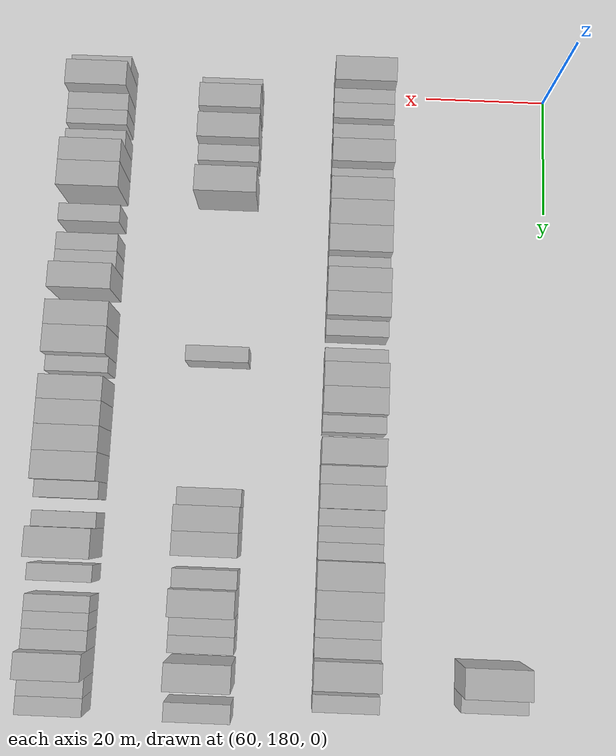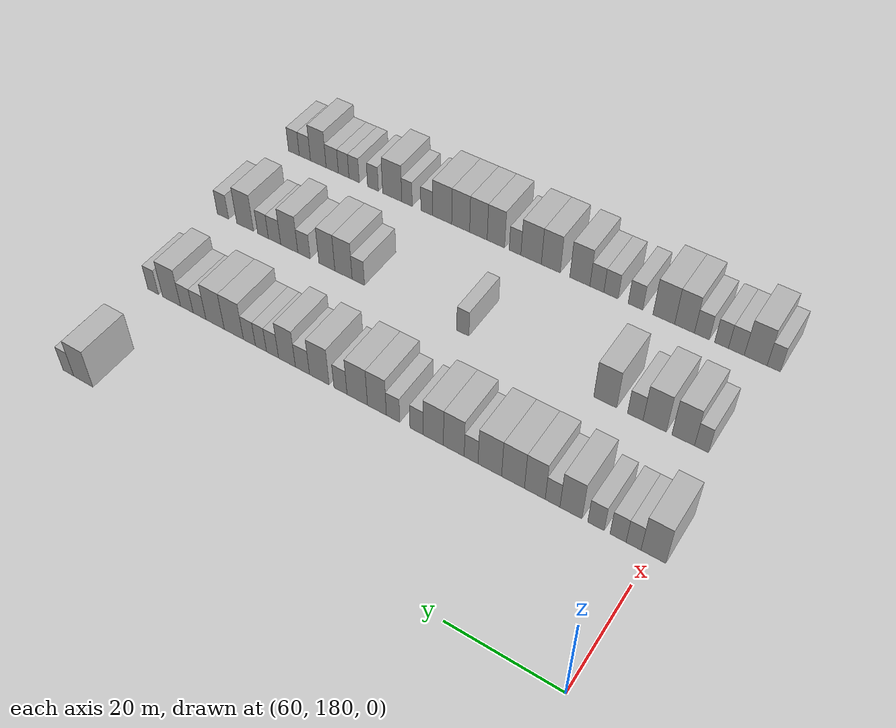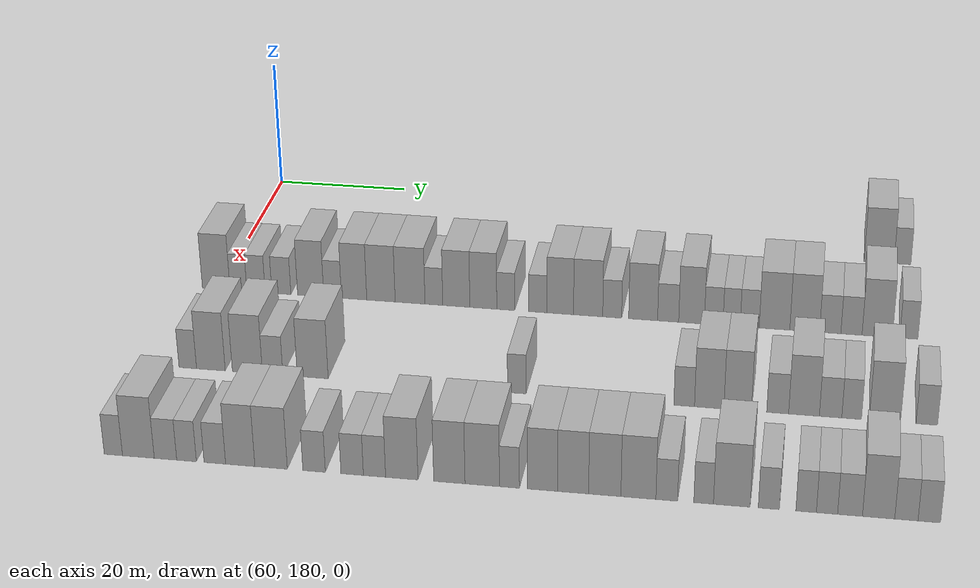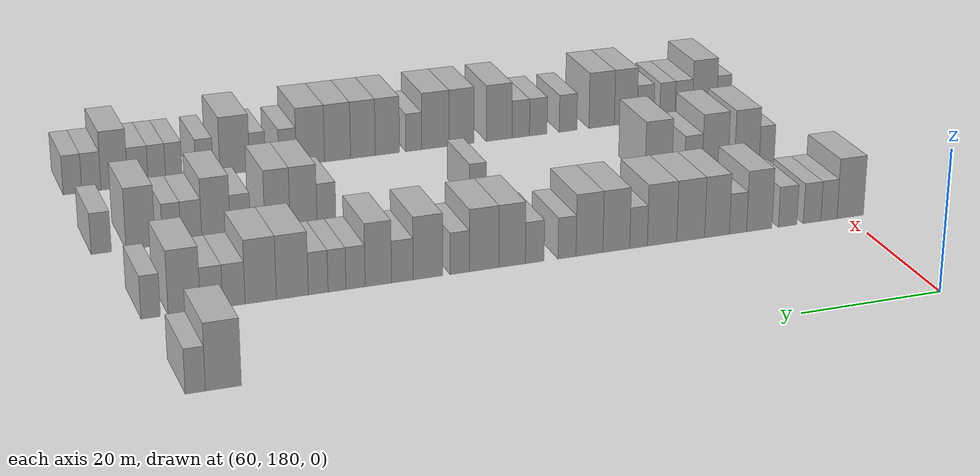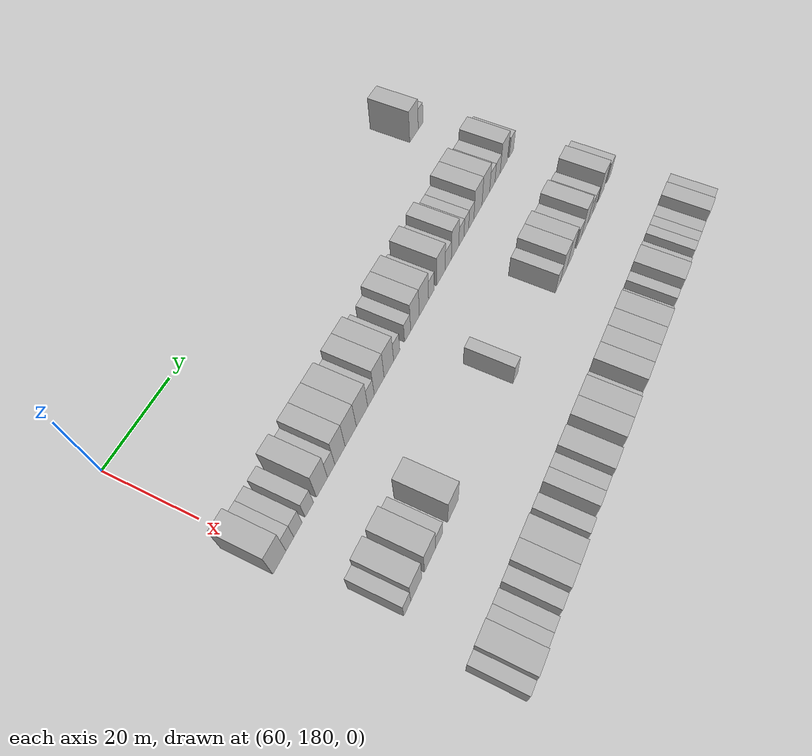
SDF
<sdf version="1.6">
 <world name="default">
  <model name="building_550">
   <static>1</static>
   <pose>69.0000 274.7743 0 0.000000 0.000000 0.000000</pose>
   <link name="link">
    <pose>0 0 4.50 0 0 0</pose>
    <collision name="collision"><geometry><box><size>10.0000 4.4063 9.0000</size></box></geometry></collision>
    <visual name="visual">
     <cast_shadows>0</cast_shadows>
     <geometry><box><size>10.0000 4.4063 9.0000</size></box></geometry>
     <material>
      <script>
       <uri>model://HANNAS_wall/materials/scripts</uri>
       <uri>model://HANNAS_wall/materials/textures</uri>
       <name>vrc/HANNAS_wall</name>
      </script>
     </material>
    </visual>
   </link>
  </model>
  <model name="building_551">
   <static>1</static>
   <pose>69.0000 278.2149 0 0.000000 0.000000 0.000000</pose>
   <link name="link">
    <pose>0 0 3.00 0 0 0</pose>
    <collision name="collision"><geometry><box><size>10.0000 2.4749 6.0000</size></box></geometry></collision>
    <visual name="visual">
     <cast_shadows>0</cast_shadows>
     <geometry><box><size>10.0000 2.4749 6.0000</size></box></geometry>
     <material>
      <script>
       <uri>model://HANNAS_wall/materials/scripts</uri>
       <uri>model://HANNAS_wall/materials/textures</uri>
       <name>vrc/HANNAS_wall</name>
      </script>
     </material>
    </visual>
   </link>
  </model>
  <model name="building_712">
   <static>1</static>
   <pose>91.0000 179.4880 0 0.000000 0.000000 0.000000</pose>
   <link name="link">
    <pose>0 0 4.50 0 0 0</pose>
    <collision name="collision"><geometry><box><size>10.0000 4.1334 9.0000</size></box></geometry></collision>
    <visual name="visual">
     <cast_shadows>0</cast_shadows>
     <geometry><box><size>10.0000 4.1334 9.0000</size></box></geometry>
     <material>
      <script>
       <uri>model://HANNAS_wall/materials/scripts</uri>
       <uri>model://HANNAS_wall/materials/textures</uri>
       <name>vrc/HANNAS_wall</name>
      </script>
     </material>
    </visual>
   </link>
  </model>
  <model name="building_713">
   <static>1</static>
   <pose>91.0000 182.8080 0 0.000000 0.000000 0.000000</pose>
   <link name="link">
    <pose>0 0 3.00 0 0 0</pose>
    <collision name="collision"><geometry><box><size>10.0000 2.5066 6.0000</size></box></geometry></collision>
    <visual name="visual">
     <cast_shadows>0</cast_shadows>
     <geometry><box><size>10.0000 2.5066 6.0000</size></box></geometry>
     <material>
      <script>
       <uri>model://HANNAS_wall/materials/scripts</uri>
       <uri>model://HANNAS_wall/materials/textures</uri>
       <name>vrc/HANNAS_wall</name>
      </script>
     </material>
    </visual>
   </link>
  </model>
  <model name="building_714">
   <static>1</static>
   <pose>91.0000 185.4249 0 0.000000 0.000000 0.000000</pose>
   <link name="link">
    <pose>0 0 3.00 0 0 0</pose>
    <collision name="collision"><geometry><box><size>10.0000 2.7272 6.0000</size></box></geometry></collision>
    <visual name="visual">
     <cast_shadows>0</cast_shadows>
     <geometry><box><size>10.0000 2.7272 6.0000</size></box></geometry>
     <material>
      <script>
       <uri>model://HANNAS_wall/materials/scripts</uri>
       <uri>model://HANNAS_wall/materials/textures</uri>
       <name>vrc/HANNAS_wall</name>
      </script>
     </material>
    </visual>
   </link>
  </model>
  <model name="building_715">
   <static>1</static>
   <pose>91.0000 189.2018 0 0.000000 0.000000 0.000000</pose>
   <link name="link">
    <pose>0 0 3.00 0 0 0</pose>
    <collision name="collision"><geometry><box><size>10.0000 2.8266 6.0000</size></box></geometry></collision>
    <visual name="visual">
     <cast_shadows>0</cast_shadows>
     <geometry><box><size>10.0000 2.8266 6.0000</size></box></geometry>
     <material>
      <script>
       <uri>model://HANNAS_wall/materials/scripts</uri>
       <uri>model://HANNAS_wall/materials/textures</uri>
       <name>vrc/HANNAS_wall</name>
      </script>
     </material>
    </visual>
   </link>
  </model>
  <model name="building_716">
   <static>1</static>
   <pose>91.0000 193.5491 0 0.000000 0.000000 0.000000</pose>
   <link name="link">
    <pose>0 0 4.50 0 0 0</pose>
    <collision name="collision"><geometry><box><size>10.0000 3.8680 9.0000</size></box></geometry></collision>
    <visual name="visual">
     <cast_shadows>0</cast_shadows>
     <geometry><box><size>10.0000 3.8680 9.0000</size></box></geometry>
     <material>
      <script>
       <uri>model://HANNAS_wall/materials/scripts</uri>
       <uri>model://HANNAS_wall/materials/textures</uri>
       <name>vrc/HANNAS_wall</name>
      </script>
     </material>
    </visual>
   </link>
  </model>
  <model name="building_717">
   <static>1</static>
   <pose>91.0000 196.7851 0 0.000000 0.000000 0.000000</pose>
   <link name="link">
    <pose>0 0 3.00 0 0 0</pose>
    <collision name="collision"><geometry><box><size>10.0000 2.6040 6.0000</size></box></geometry></collision>
    <visual name="visual">
     <cast_shadows>0</cast_shadows>
     <geometry><box><size>10.0000 2.6040 6.0000</size></box></geometry>
     <material>
      <script>
       <uri>model://HANNAS_wall/materials/scripts</uri>
       <uri>model://HANNAS_wall/materials/textures</uri>
       <name>vrc/HANNAS_wall</name>
      </script>
     </material>
    </visual>
   </link>
  </model>
  <model name="building_718">
   <static>1</static>
   <pose>91.0000 199.9524 0 0.000000 0.000000 0.000000</pose>
   <link name="link">
    <pose>0 0 4.50 0 0 0</pose>
    <collision name="collision"><geometry><box><size>10.0000 3.7306 9.0000</size></box></geometry></collision>
    <visual name="visual">
     <cast_shadows>0</cast_shadows>
     <geometry><box><size>10.0000 3.7306 9.0000</size></box></geometry>
     <material>
      <script>
       <uri>model://HANNAS_wall/materials/scripts</uri>
       <uri>model://HANNAS_wall/materials/textures</uri>
       <name>vrc/HANNAS_wall</name>
      </script>
     </material>
    </visual>
   </link>
  </model>
  <model name="building_719">
   <static>1</static>
   <pose>91.0000 203.9065 0 0.000000 0.000000 0.000000</pose>
   <link name="link">
    <pose>0 0 4.50 0 0 0</pose>
    <collision name="collision"><geometry><box><size>10.0000 4.1776 9.0000</size></box></geometry></collision>
    <visual name="visual">
     <cast_shadows>0</cast_shadows>
     <geometry><box><size>10.0000 4.1776 9.0000</size></box></geometry>
     <material>
      <script>
       <uri>model://HANNAS_wall/materials/scripts</uri>
       <uri>model://HANNAS_wall/materials/textures</uri>
       <name>vrc/HANNAS_wall</name>
      </script>
     </material>
    </visual>
   </link>
  </model>
  <model name="building_720">
   <static>1</static>
   <pose>91.0000 208.1771 0 0.000000 0.000000 0.000000</pose>
   <link name="link">
    <pose>0 0 4.50 0 0 0</pose>
    <collision name="collision"><geometry><box><size>10.0000 4.3636 9.0000</size></box></geometry></collision>
    <visual name="visual">
     <cast_shadows>0</cast_shadows>
     <geometry><box><size>10.0000 4.3636 9.0000</size></box></geometry>
     <material>
      <script>
       <uri>model://HANNAS_wall/materials/scripts</uri>
       <uri>model://HANNAS_wall/materials/textures</uri>
       <name>vrc/HANNAS_wall</name>
      </script>
     </material>
    </visual>
   </link>
  </model>
  <model name="building_721">
   <static>1</static>
   <pose>91.0000 211.6557 0 0.000000 0.000000 0.000000</pose>
   <link name="link">
    <pose>0 0 3.00 0 0 0</pose>
    <collision name="collision"><geometry><box><size>10.0000 2.5936 6.0000</size></box></geometry></collision>
    <visual name="visual">
     <cast_shadows>0</cast_shadows>
     <geometry><box><size>10.0000 2.5936 6.0000</size></box></geometry>
     <material>
      <script>
       <uri>model://HANNAS_wall/materials/scripts</uri>
       <uri>model://HANNAS_wall/materials/textures</uri>
       <name>vrc/HANNAS_wall</name>
      </script>
     </material>
    </visual>
   </link>
  </model>
  <model name="building_722">
   <static>1</static>
   <pose>91.0000 214.9218 0 0.000000 0.000000 0.000000</pose>
   <link name="link">
    <pose>0 0 4.50 0 0 0</pose>
    <collision name="collision"><geometry><box><size>10.0000 3.9386 9.0000</size></box></geometry></collision>
    <visual name="visual">
     <cast_shadows>0</cast_shadows>
     <geometry><box><size>10.0000 3.9386 9.0000</size></box></geometry>
     <material>
      <script>
       <uri>model://HANNAS_wall/materials/scripts</uri>
       <uri>model://HANNAS_wall/materials/textures</uri>
       <name>vrc/HANNAS_wall</name>
      </script>
     </material>
    </visual>
   </link>
  </model>
  <model name="building_723">
   <static>1</static>
   <pose>91.0000 218.8424 0 0.000000 0.000000 0.000000</pose>
   <link name="link">
    <pose>0 0 4.50 0 0 0</pose>
    <collision name="collision"><geometry><box><size>10.0000 3.9027 9.0000</size></box></geometry></collision>
    <visual name="visual">
     <cast_shadows>0</cast_shadows>
     <geometry><box><size>10.0000 3.9027 9.0000</size></box></geometry>
     <material>
      <script>
       <uri>model://HANNAS_wall/materials/scripts</uri>
       <uri>model://HANNAS_wall/materials/textures</uri>
       <name>vrc/HANNAS_wall</name>
      </script>
     </material>
    </visual>
   </link>
  </model>
  <model name="building_724">
   <static>1</static>
   <pose>91.0000 222.0923 0 0.000000 0.000000 0.000000</pose>
   <link name="link">
    <pose>0 0 3.00 0 0 0</pose>
    <collision name="collision"><geometry><box><size>10.0000 2.5969 6.0000</size></box></geometry></collision>
    <visual name="visual">
     <cast_shadows>0</cast_shadows>
     <geometry><box><size>10.0000 2.5969 6.0000</size></box></geometry>
     <material>
      <script>
       <uri>model://HANNAS_wall/materials/scripts</uri>
       <uri>model://HANNAS_wall/materials/textures</uri>
       <name>vrc/HANNAS_wall</name>
      </script>
     </material>
    </visual>
   </link>
  </model>
  <model name="building_725">
   <static>1</static>
   <pose>91.0000 226.7240 0 0.000000 0.000000 0.000000</pose>
   <link name="link">
    <pose>0 0 3.00 0 0 0</pose>
    <collision name="collision"><geometry><box><size>10.0000 2.6665 6.0000</size></box></geometry></collision>
    <visual name="visual">
     <cast_shadows>0</cast_shadows>
     <geometry><box><size>10.0000 2.6665 6.0000</size></box></geometry>
     <material>
      <script>
       <uri>model://HANNAS_wall/materials/scripts</uri>
       <uri>model://HANNAS_wall/materials/textures</uri>
       <name>vrc/HANNAS_wall</name>
      </script>
     </material>
    </visual>
   </link>
  </model>
  <model name="building_726">
   <static>1</static>
   <pose>91.0000 229.9558 0 0.000000 0.000000 0.000000</pose>
   <link name="link">
    <pose>0 0 4.50 0 0 0</pose>
    <collision name="collision"><geometry><box><size>10.0000 3.7972 9.0000</size></box></geometry></collision>
    <visual name="visual">
     <cast_shadows>0</cast_shadows>
     <geometry><box><size>10.0000 3.7972 9.0000</size></box></geometry>
     <material>
      <script>
       <uri>model://HANNAS_wall/materials/scripts</uri>
       <uri>model://HANNAS_wall/materials/textures</uri>
       <name>vrc/HANNAS_wall</name>
      </script>
     </material>
    </visual>
   </link>
  </model>
  <model name="building_727">
   <static>1</static>
   <pose>91.0000 233.9412 0 0.000000 0.000000 0.000000</pose>
   <link name="link">
    <pose>0 0 4.50 0 0 0</pose>
    <collision name="collision"><geometry><box><size>10.0000 4.1735 9.0000</size></box></geometry></collision>
    <visual name="visual">
     <cast_shadows>0</cast_shadows>
     <geometry><box><size>10.0000 4.1735 9.0000</size></box></geometry>
     <material>
      <script>
       <uri>model://HANNAS_wall/materials/scripts</uri>
       <uri>model://HANNAS_wall/materials/textures</uri>
       <name>vrc/HANNAS_wall</name>
      </script>
     </material>
    </visual>
   </link>
  </model>
  <model name="building_728">
   <static>1</static>
   <pose>91.0000 237.3779 0 0.000000 0.000000 0.000000</pose>
   <link name="link">
    <pose>0 0 3.00 0 0 0</pose>
    <collision name="collision"><geometry><box><size>10.0000 2.7000 6.0000</size></box></geometry></collision>
    <visual name="visual">
     <cast_shadows>0</cast_shadows>
     <geometry><box><size>10.0000 2.7000 6.0000</size></box></geometry>
     <material>
      <script>
       <uri>model://HANNAS_wall/materials/scripts</uri>
       <uri>model://HANNAS_wall/materials/textures</uri>
       <name>vrc/HANNAS_wall</name>
      </script>
     </material>
    </visual>
   </link>
  </model>
  <model name="building_729">
   <static>1</static>
   <pose>91.0000 241.7847 0 0.000000 0.000000 0.000000</pose>
   <link name="link">
    <pose>0 0 4.50 0 0 0</pose>
    <collision name="collision"><geometry><box><size>10.0000 4.1135 9.0000</size></box></geometry></collision>
    <visual name="visual">
     <cast_shadows>0</cast_shadows>
     <geometry><box><size>10.0000 4.1135 9.0000</size></box></geometry>
     <material>
      <script>
       <uri>model://HANNAS_wall/materials/scripts</uri>
       <uri>model://HANNAS_wall/materials/textures</uri>
       <name>vrc/HANNAS_wall</name>
      </script>
     </material>
    </visual>
   </link>
  </model>
  <model name="building_730">
   <static>1</static>
   <pose>91.0000 245.3384 0 0.000000 0.000000 0.000000</pose>
   <link name="link">
    <pose>0 0 3.00 0 0 0</pose>
    <collision name="collision"><geometry><box><size>10.0000 2.9939 6.0000</size></box></geometry></collision>
    <visual name="visual">
     <cast_shadows>0</cast_shadows>
     <geometry><box><size>10.0000 2.9939 6.0000</size></box></geometry>
     <material>
      <script>
       <uri>model://HANNAS_wall/materials/scripts</uri>
       <uri>model://HANNAS_wall/materials/textures</uri>
       <name>vrc/HANNAS_wall</name>
      </script>
     </material>
    </visual>
   </link>
  </model>
  <model name="building_731">
   <static>1</static>
   <pose>91.0000 248.6474 0 0.000000 0.000000 0.000000</pose>
   <link name="link">
    <pose>0 0 4.50 0 0 0</pose>
    <collision name="collision"><geometry><box><size>10.0000 3.6241 9.0000</size></box></geometry></collision>
    <visual name="visual">
     <cast_shadows>0</cast_shadows>
     <geometry><box><size>10.0000 3.6241 9.0000</size></box></geometry>
     <material>
      <script>
       <uri>model://HANNAS_wall/materials/scripts</uri>
       <uri>model://HANNAS_wall/materials/textures</uri>
       <name>vrc/HANNAS_wall</name>
      </script>
     </material>
    </visual>
   </link>
  </model>
  <model name="building_732">
   <static>1</static>
   <pose>91.0000 251.7735 0 0.000000 0.000000 0.000000</pose>
   <link name="link">
    <pose>0 0 3.00 0 0 0</pose>
    <collision name="collision"><geometry><box><size>10.0000 2.6281 6.0000</size></box></geometry></collision>
    <visual name="visual">
     <cast_shadows>0</cast_shadows>
     <geometry><box><size>10.0000 2.6281 6.0000</size></box></geometry>
     <material>
      <script>
       <uri>model://HANNAS_wall/materials/scripts</uri>
       <uri>model://HANNAS_wall/materials/textures</uri>
       <name>vrc/HANNAS_wall</name>
      </script>
     </material>
    </visual>
   </link>
  </model>
  <model name="building_733">
   <static>1</static>
   <pose>91.0000 254.2997 0 0.000000 0.000000 0.000000</pose>
   <link name="link">
    <pose>0 0 3.00 0 0 0</pose>
    <collision name="collision"><geometry><box><size>10.0000 2.4244 6.0000</size></box></geometry></collision>
    <visual name="visual">
     <cast_shadows>0</cast_shadows>
     <geometry><box><size>10.0000 2.4244 6.0000</size></box></geometry>
     <material>
      <script>
       <uri>model://HANNAS_wall/materials/scripts</uri>
       <uri>model://HANNAS_wall/materials/textures</uri>
       <name>vrc/HANNAS_wall</name>
      </script>
     </material>
    </visual>
   </link>
  </model>
  <model name="building_734">
   <static>1</static>
   <pose>91.0000 256.8444 0 0.000000 0.000000 0.000000</pose>
   <link name="link">
    <pose>0 0 3.00 0 0 0</pose>
    <collision name="collision"><geometry><box><size>10.0000 2.6650 6.0000</size></box></geometry></collision>
    <visual name="visual">
     <cast_shadows>0</cast_shadows>
     <geometry><box><size>10.0000 2.6650 6.0000</size></box></geometry>
     <material>
      <script>
       <uri>model://HANNAS_wall/materials/scripts</uri>
       <uri>model://HANNAS_wall/materials/textures</uri>
       <name>vrc/HANNAS_wall</name>
      </script>
     </material>
    </visual>
   </link>
  </model>
  <model name="building_735">
   <static>1</static>
   <pose>91.0000 260.3201 0 0.000000 0.000000 0.000000</pose>
   <link name="link">
    <pose>0 0 4.50 0 0 0</pose>
    <collision name="collision"><geometry><box><size>10.0000 4.2863 9.0000</size></box></geometry></collision>
    <visual name="visual">
     <cast_shadows>0</cast_shadows>
     <geometry><box><size>10.0000 4.2863 9.0000</size></box></geometry>
     <material>
      <script>
       <uri>model://HANNAS_wall/materials/scripts</uri>
       <uri>model://HANNAS_wall/materials/textures</uri>
       <name>vrc/HANNAS_wall</name>
      </script>
     </material>
    </visual>
   </link>
  </model>
  <model name="building_736">
   <static>1</static>
   <pose>91.0000 264.5399 0 0.000000 0.000000 0.000000</pose>
   <link name="link">
    <pose>0 0 4.50 0 0 0</pose>
    <collision name="collision"><geometry><box><size>10.0000 4.1533 9.0000</size></box></geometry></collision>
    <visual name="visual">
     <cast_shadows>0</cast_shadows>
     <geometry><box><size>10.0000 4.1533 9.0000</size></box></geometry>
     <material>
      <script>
       <uri>model://HANNAS_wall/materials/scripts</uri>
       <uri>model://HANNAS_wall/materials/textures</uri>
       <name>vrc/HANNAS_wall</name>
      </script>
     </material>
    </visual>
   </link>
  </model>
  <model name="building_737">
   <static>1</static>
   <pose>91.0000 268.0939 0 0.000000 0.000000 0.000000</pose>
   <link name="link">
    <pose>0 0 3.00 0 0 0</pose>
    <collision name="collision"><geometry><box><size>10.0000 2.9546 6.0000</size></box></geometry></collision>
    <visual name="visual">
     <cast_shadows>0</cast_shadows>
     <geometry><box><size>10.0000 2.9546 6.0000</size></box></geometry>
     <material>
      <script>
       <uri>model://HANNAS_wall/materials/scripts</uri>
       <uri>model://HANNAS_wall/materials/textures</uri>
       <name>vrc/HANNAS_wall</name>
      </script>
     </material>
    </visual>
   </link>
  </model>
  <model name="building_738">
   <static>1</static>
   <pose>91.0000 271.0412 0 0.000000 0.000000 0.000000</pose>
   <link name="link">
    <pose>0 0 3.00 0 0 0</pose>
    <collision name="collision"><geometry><box><size>10.0000 2.9401 6.0000</size></box></geometry></collision>
    <visual name="visual">
     <cast_shadows>0</cast_shadows>
     <geometry><box><size>10.0000 2.9401 6.0000</size></box></geometry>
     <material>
      <script>
       <uri>model://HANNAS_wall/materials/scripts</uri>
       <uri>model://HANNAS_wall/materials/textures</uri>
       <name>vrc/HANNAS_wall</name>
      </script>
     </material>
    </visual>
   </link>
  </model>
  <model name="building_739">
   <static>1</static>
   <pose>91.0000 274.6140 0 0.000000 0.000000 0.000000</pose>
   <link name="link">
    <pose>0 0 4.50 0 0 0</pose>
    <collision name="collision"><geometry><box><size>10.0000 4.2055 9.0000</size></box></geometry></collision>
    <visual name="visual">
     <cast_shadows>0</cast_shadows>
     <geometry><box><size>10.0000 4.2055 9.0000</size></box></geometry>
     <material>
      <script>
       <uri>model://HANNAS_wall/materials/scripts</uri>
       <uri>model://HANNAS_wall/materials/textures</uri>
       <name>vrc/HANNAS_wall</name>
      </script>
     </material>
    </visual>
   </link>
  </model>
  <model name="building_740">
   <static>1</static>
   <pose>91.0000 278.9707 0 0.000000 0.000000 0.000000</pose>
   <link name="link">
    <pose>0 0 3.00 0 0 0</pose>
    <collision name="collision"><geometry><box><size>10.0000 2.5079 6.0000</size></box></geometry></collision>
    <visual name="visual">
     <cast_shadows>0</cast_shadows>
     <geometry><box><size>10.0000 2.5079 6.0000</size></box></geometry>
     <material>
      <script>
       <uri>model://HANNAS_wall/materials/scripts</uri>
       <uri>model://HANNAS_wall/materials/textures</uri>
       <name>vrc/HANNAS_wall</name>
      </script>
     </material>
    </visual>
   </link>
  </model>
  <model name="building_901">
   <static>1</static>
   <pose>113.0000 181.8021 0 0.000000 0.000000 0.000000</pose>
   <link name="link">
    <pose>0 0 3.00 0 0 0</pose>
    <collision name="collision"><geometry><box><size>10.0000 2.4540 6.0000</size></box></geometry></collision>
    <visual name="visual">
     <cast_shadows>0</cast_shadows>
     <geometry><box><size>10.0000 2.4540 6.0000</size></box></geometry>
     <material>
      <script>
       <uri>model://HANNAS_wall/materials/scripts</uri>
       <uri>model://HANNAS_wall/materials/textures</uri>
       <name>vrc/HANNAS_wall</name>
      </script>
     </material>
    </visual>
   </link>
  </model>
  <model name="building_902">
   <static>1</static>
   <pose>113.0000 185.0401 0 0.000000 0.000000 0.000000</pose>
   <link name="link">
    <pose>0 0 4.50 0 0 0</pose>
    <collision name="collision"><geometry><box><size>10.0000 4.0221 9.0000</size></box></geometry></collision>
    <visual name="visual">
     <cast_shadows>0</cast_shadows>
     <geometry><box><size>10.0000 4.0221 9.0000</size></box></geometry>
     <material>
      <script>
       <uri>model://HANNAS_wall/materials/scripts</uri>
       <uri>model://HANNAS_wall/materials/textures</uri>
       <name>vrc/HANNAS_wall</name>
      </script>
     </material>
    </visual>
   </link>
  </model>
  <model name="building_903">
   <static>1</static>
   <pose>113.0000 190.1479 0 0.000000 0.000000 0.000000</pose>
   <link name="link">
    <pose>0 0 4.50 0 0 0</pose>
    <collision name="collision"><geometry><box><size>10.0000 4.1935 9.0000</size></box></geometry></collision>
    <visual name="visual">
     <cast_shadows>0</cast_shadows>
     <geometry><box><size>10.0000 4.1935 9.0000</size></box></geometry>
     <material>
      <script>
       <uri>model://HANNAS_wall/materials/scripts</uri>
       <uri>model://HANNAS_wall/materials/textures</uri>
       <name>vrc/HANNAS_wall</name>
      </script>
     </material>
    </visual>
   </link>
  </model>
  <model name="building_904">
   <static>1</static>
   <pose>113.0000 193.6632 0 0.000000 0.000000 0.000000</pose>
   <link name="link">
    <pose>0 0 3.00 0 0 0</pose>
    <collision name="collision"><geometry><box><size>10.0000 2.8371 6.0000</size></box></geometry></collision>
    <visual name="visual">
     <cast_shadows>0</cast_shadows>
     <geometry><box><size>10.0000 2.8371 6.0000</size></box></geometry>
     <material>
      <script>
       <uri>model://HANNAS_wall/materials/scripts</uri>
       <uri>model://HANNAS_wall/materials/textures</uri>
       <name>vrc/HANNAS_wall</name>
      </script>
     </material>
    </visual>
   </link>
  </model>
  <model name="building_905">
   <static>1</static>
   <pose>113.0000 199.2167 0 0.000000 0.000000 0.000000</pose>
   <link name="link">
    <pose>0 0 4.50 0 0 0</pose>
    <collision name="collision"><geometry><box><size>10.0000 4.2698 9.0000</size></box></geometry></collision>
    <visual name="visual">
     <cast_shadows>0</cast_shadows>
     <geometry><box><size>10.0000 4.2698 9.0000</size></box></geometry>
     <material>
      <script>
       <uri>model://HANNAS_wall/materials/scripts</uri>
       <uri>model://HANNAS_wall/materials/textures</uri>
       <name>vrc/HANNAS_wall</name>
      </script>
     </material>
    </visual>
   </link>
  </model>
  <model name="building_906">
   <static>1</static>
   <pose>113.0000 227.1167 0 0.000000 0.000000 0.000000</pose>
   <link name="link">
    <pose>0 0 3.00 0 0 0</pose>
    <collision name="collision"><geometry><box><size>10.0000 2.5101 6.0000</size></box></geometry></collision>
    <visual name="visual">
     <cast_shadows>0</cast_shadows>
     <geometry><box><size>10.0000 2.5101 6.0000</size></box></geometry>
     <material>
      <script>
       <uri>model://HANNAS_wall/materials/scripts</uri>
       <uri>model://HANNAS_wall/materials/textures</uri>
       <name>vrc/HANNAS_wall</name>
      </script>
     </material>
    </visual>
   </link>
  </model>
  <model name="building_907">
   <static>1</static>
   <pose>113.0000 249.4696 0 0.000000 0.000000 0.000000</pose>
   <link name="link">
    <pose>0 0 3.00 0 0 0</pose>
    <collision name="collision"><geometry><box><size>10.0000 2.7319 6.0000</size></box></geometry></collision>
    <visual name="visual">
     <cast_shadows>0</cast_shadows>
     <geometry><box><size>10.0000 2.7319 6.0000</size></box></geometry>
     <material>
      <script>
       <uri>model://HANNAS_wall/materials/scripts</uri>
       <uri>model://HANNAS_wall/materials/textures</uri>
       <name>vrc/HANNAS_wall</name>
      </script>
     </material>
    </visual>
   </link>
  </model>
  <model name="building_908">
   <static>1</static>
   <pose>113.0000 252.7746 0 0.000000 0.000000 0.000000</pose>
   <link name="link">
    <pose>0 0 4.50 0 0 0</pose>
    <collision name="collision"><geometry><box><size>10.0000 3.8781 9.0000</size></box></geometry></collision>
    <visual name="visual">
     <cast_shadows>0</cast_shadows>
     <geometry><box><size>10.0000 3.8781 9.0000</size></box></geometry>
     <material>
      <script>
       <uri>model://HANNAS_wall/materials/scripts</uri>
       <uri>model://HANNAS_wall/materials/textures</uri>
       <name>vrc/HANNAS_wall</name>
      </script>
     </material>
    </visual>
   </link>
  </model>
  <model name="building_909">
   <static>1</static>
   <pose>113.0000 256.5248 0 0.000000 0.000000 0.000000</pose>
   <link name="link">
    <pose>0 0 4.50 0 0 0</pose>
    <collision name="collision"><geometry><box><size>10.0000 3.6223 9.0000</size></box></geometry></collision>
    <visual name="visual">
     <cast_shadows>0</cast_shadows>
     <geometry><box><size>10.0000 3.6223 9.0000</size></box></geometry>
     <material>
      <script>
       <uri>model://HANNAS_wall/materials/scripts</uri>
       <uri>model://HANNAS_wall/materials/textures</uri>
       <name>vrc/HANNAS_wall</name>
      </script>
     </material>
    </visual>
   </link>
  </model>
  <model name="building_910">
   <static>1</static>
   <pose>113.0000 261.7708 0 0.000000 0.000000 0.000000</pose>
   <link name="link">
    <pose>0 0 3.00 0 0 0</pose>
    <collision name="collision"><geometry><box><size>10.0000 2.8697 6.0000</size></box></geometry></collision>
    <visual name="visual">
     <cast_shadows>0</cast_shadows>
     <geometry><box><size>10.0000 2.8697 6.0000</size></box></geometry>
     <material>
      <script>
       <uri>model://HANNAS_wall/materials/scripts</uri>
       <uri>model://HANNAS_wall/materials/textures</uri>
       <name>vrc/HANNAS_wall</name>
      </script>
     </material>
    </visual>
   </link>
  </model>
  <model name="building_911">
   <static>1</static>
   <pose>113.0000 265.2092 0 0.000000 0.000000 0.000000</pose>
   <link name="link">
    <pose>0 0 4.50 0 0 0</pose>
    <collision name="collision"><geometry><box><size>10.0000 4.0070 9.0000</size></box></geometry></collision>
    <visual name="visual">
     <cast_shadows>0</cast_shadows>
     <geometry><box><size>10.0000 4.0070 9.0000</size></box></geometry>
     <material>
      <script>
       <uri>model://HANNAS_wall/materials/scripts</uri>
       <uri>model://HANNAS_wall/materials/textures</uri>
       <name>vrc/HANNAS_wall</name>
      </script>
     </material>
    </visual>
   </link>
  </model>
  <model name="building_912">
   <static>1</static>
   <pose>113.0000 268.6697 0 0.000000 0.000000 0.000000</pose>
   <link name="link">
    <pose>0 0 3.00 0 0 0</pose>
    <collision name="collision"><geometry><box><size>10.0000 2.9140 6.0000</size></box></geometry></collision>
    <visual name="visual">
     <cast_shadows>0</cast_shadows>
     <geometry><box><size>10.0000 2.9140 6.0000</size></box></geometry>
     <material>
      <script>
       <uri>model://HANNAS_wall/materials/scripts</uri>
       <uri>model://HANNAS_wall/materials/textures</uri>
       <name>vrc/HANNAS_wall</name>
      </script>
     </material>
    </visual>
   </link>
  </model>
  <model name="building_913">
   <static>1</static>
   <pose>113.0000 271.4043 0 0.000000 0.000000 0.000000</pose>
   <link name="link">
    <pose>0 0 3.00 0 0 0</pose>
    <collision name="collision"><geometry><box><size>10.0000 2.5551 6.0000</size></box></geometry></collision>
    <visual name="visual">
     <cast_shadows>0</cast_shadows>
     <geometry><box><size>10.0000 2.5551 6.0000</size></box></geometry>
     <material>
      <script>
       <uri>model://HANNAS_wall/materials/scripts</uri>
       <uri>model://HANNAS_wall/materials/textures</uri>
       <name>vrc/HANNAS_wall</name>
      </script>
     </material>
    </visual>
   </link>
  </model>
  <model name="building_914">
   <static>1</static>
   <pose>113.0000 275.7036 0 0.000000 0.000000 0.000000</pose>
   <link name="link">
    <pose>0 0 4.50 0 0 0</pose>
    <collision name="collision"><geometry><box><size>10.0000 4.0435 9.0000</size></box></geometry></collision>
    <visual name="visual">
     <cast_shadows>0</cast_shadows>
     <geometry><box><size>10.0000 4.0435 9.0000</size></box></geometry>
     <material>
      <script>
       <uri>model://HANNAS_wall/materials/scripts</uri>
       <uri>model://HANNAS_wall/materials/textures</uri>
       <name>vrc/HANNAS_wall</name>
      </script>
     </material>
    </visual>
   </link>
  </model>
  <model name="building_915">
   <static>1</static>
   <pose>113.0000 281.1080 0 0.000000 0.000000 0.000000</pose>
   <link name="link">
    <pose>0 0 3.00 0 0 0</pose>
    <collision name="collision"><geometry><box><size>10.0000 2.7653 6.0000</size></box></geometry></collision>
    <visual name="visual">
     <cast_shadows>0</cast_shadows>
     <geometry><box><size>10.0000 2.7653 6.0000</size></box></geometry>
     <material>
      <script>
       <uri>model://HANNAS_wall/materials/scripts</uri>
       <uri>model://HANNAS_wall/materials/textures</uri>
       <name>vrc/HANNAS_wall</name>
      </script>
     </material>
    </visual>
   </link>
  </model>
  <model name="building_1061">
   <static>1</static>
   <pose>135.0000 178.6243 0 0.000000 0.000000 0.000000</pose>
   <link name="link">
    <pose>0 0 3.00 0 0 0</pose>
    <collision name="collision"><geometry><box><size>10.0000 2.4075 6.0000</size></box></geometry></collision>
    <visual name="visual">
     <cast_shadows>0</cast_shadows>
     <geometry><box><size>10.0000 2.4075 6.0000</size></box></geometry>
     <material>
      <script>
       <uri>model://HANNAS_wall/materials/scripts</uri>
       <uri>model://HANNAS_wall/materials/textures</uri>
       <name>vrc/HANNAS_wall</name>
      </script>
     </material>
    </visual>
   </link>
  </model>
  <model name="building_1062">
   <static>1</static>
   <pose>135.0000 181.9142 0 0.000000 0.000000 0.000000</pose>
   <link name="link">
    <pose>0 0 4.50 0 0 0</pose>
    <collision name="collision"><geometry><box><size>10.0000 4.1722 9.0000</size></box></geometry></collision>
    <visual name="visual">
     <cast_shadows>0</cast_shadows>
     <geometry><box><size>10.0000 4.1722 9.0000</size></box></geometry>
     <material>
      <script>
       <uri>model://HANNAS_wall/materials/scripts</uri>
       <uri>model://HANNAS_wall/materials/textures</uri>
       <name>vrc/HANNAS_wall</name>
      </script>
     </material>
    </visual>
   </link>
  </model>
  <model name="building_1063">
   <static>1</static>
   <pose>135.0000 185.4693 0 0.000000 0.000000 0.000000</pose>
   <link name="link">
    <pose>0 0 3.00 0 0 0</pose>
    <collision name="collision"><geometry><box><size>10.0000 2.9380 6.0000</size></box></geometry></collision>
    <visual name="visual">
     <cast_shadows>0</cast_shadows>
     <geometry><box><size>10.0000 2.9380 6.0000</size></box></geometry>
     <material>
      <script>
       <uri>model://HANNAS_wall/materials/scripts</uri>
       <uri>model://HANNAS_wall/materials/textures</uri>
       <name>vrc/HANNAS_wall</name>
      </script>
     </material>
    </visual>
   </link>
  </model>
  <model name="building_1064">
   <static>1</static>
   <pose>135.0000 188.2244 0 0.000000 0.000000 0.000000</pose>
   <link name="link">
    <pose>0 0 3.00 0 0 0</pose>
    <collision name="collision"><geometry><box><size>10.0000 2.5723 6.0000</size></box></geometry></collision>
    <visual name="visual">
     <cast_shadows>0</cast_shadows>
     <geometry><box><size>10.0000 2.5723 6.0000</size></box></geometry>
     <material>
      <script>
       <uri>model://HANNAS_wall/materials/scripts</uri>
       <uri>model://HANNAS_wall/materials/textures</uri>
       <name>vrc/HANNAS_wall</name>
      </script>
     </material>
    </visual>
   </link>
  </model>
  <model name="building_1065">
   <static>1</static>
   <pose>135.0000 191.9147 0 0.000000 0.000000 0.000000</pose>
   <link name="link">
    <pose>0 0 3.00 0 0 0</pose>
    <collision name="collision"><geometry><box><size>10.0000 2.8083 6.0000</size></box></geometry></collision>
    <visual name="visual">
     <cast_shadows>0</cast_shadows>
     <geometry><box><size>10.0000 2.8083 6.0000</size></box></geometry>
     <material>
      <script>
       <uri>model://HANNAS_wall/materials/scripts</uri>
       <uri>model://HANNAS_wall/materials/textures</uri>
       <name>vrc/HANNAS_wall</name>
      </script>
     </material>
    </visual>
   </link>
  </model>
  <model name="building_1066">
   <static>1</static>
   <pose>135.0000 195.2173 0 0.000000 0.000000 0.000000</pose>
   <link name="link">
    <pose>0 0 4.50 0 0 0</pose>
    <collision name="collision"><geometry><box><size>10.0000 3.7969 9.0000</size></box></geometry></collision>
    <visual name="visual">
     <cast_shadows>0</cast_shadows>
     <geometry><box><size>10.0000 3.7969 9.0000</size></box></geometry>
     <material>
      <script>
       <uri>model://HANNAS_wall/materials/scripts</uri>
       <uri>model://HANNAS_wall/materials/textures</uri>
       <name>vrc/HANNAS_wall</name>
      </script>
     </material>
    </visual>
   </link>
  </model>
  <model name="building_1067">
   <static>1</static>
   <pose>135.0000 199.2188 0 0.000000 0.000000 0.000000</pose>
   <link name="link">
    <pose>0 0 4.50 0 0 0</pose>
    <collision name="collision"><geometry><box><size>10.0000 4.2061 9.0000</size></box></geometry></collision>
    <visual name="visual">
     <cast_shadows>0</cast_shadows>
     <geometry><box><size>10.0000 4.2061 9.0000</size></box></geometry>
     <material>
      <script>
       <uri>model://HANNAS_wall/materials/scripts</uri>
       <uri>model://HANNAS_wall/materials/textures</uri>
       <name>vrc/HANNAS_wall</name>
      </script>
     </material>
    </visual>
   </link>
  </model>
  <model name="building_1068">
   <static>1</static>
   <pose>135.0000 204.7687 0 0.000000 0.000000 0.000000</pose>
   <link name="link">
    <pose>0 0 3.00 0 0 0</pose>
    <collision name="collision"><geometry><box><size>10.0000 2.8937 6.0000</size></box></geometry></collision>
    <visual name="visual">
     <cast_shadows>0</cast_shadows>
     <geometry><box><size>10.0000 2.8937 6.0000</size></box></geometry>
     <material>
      <script>
       <uri>model://HANNAS_wall/materials/scripts</uri>
       <uri>model://HANNAS_wall/materials/textures</uri>
       <name>vrc/HANNAS_wall</name>
      </script>
     </material>
    </visual>
   </link>
  </model>
  <model name="building_1069">
   <static>1</static>
   <pose>135.0000 209.6517 0 0.000000 0.000000 0.000000</pose>
   <link name="link">
    <pose>0 0 3.00 0 0 0</pose>
    <collision name="collision"><geometry><box><size>10.0000 2.8724 6.0000</size></box></geometry></collision>
    <visual name="visual">
     <cast_shadows>0</cast_shadows>
     <geometry><box><size>10.0000 2.8724 6.0000</size></box></geometry>
     <material>
      <script>
       <uri>model://HANNAS_wall/materials/scripts</uri>
       <uri>model://HANNAS_wall/materials/textures</uri>
       <name>vrc/HANNAS_wall</name>
      </script>
     </material>
    </visual>
   </link>
  </model>
  <model name="building_1070">
   <static>1</static>
   <pose>135.0000 212.5064 0 0.000000 0.000000 0.000000</pose>
   <link name="link">
    <pose>0 0 3.00 0 0 0</pose>
    <collision name="collision"><geometry><box><size>10.0000 2.8370 6.0000</size></box></geometry></collision>
    <visual name="visual">
     <cast_shadows>0</cast_shadows>
     <geometry><box><size>10.0000 2.8370 6.0000</size></box></geometry>
     <material>
      <script>
       <uri>model://HANNAS_wall/materials/scripts</uri>
       <uri>model://HANNAS_wall/materials/textures</uri>
       <name>vrc/HANNAS_wall</name>
      </script>
     </material>
    </visual>
   </link>
  </model>
  <model name="building_1071">
   <static>1</static>
   <pose>135.0000 215.9877 0 0.000000 0.000000 0.000000</pose>
   <link name="link">
    <pose>0 0 4.50 0 0 0</pose>
    <collision name="collision"><geometry><box><size>10.0000 4.1257 9.0000</size></box></geometry></collision>
    <visual name="visual">
     <cast_shadows>0</cast_shadows>
     <geometry><box><size>10.0000 4.1257 9.0000</size></box></geometry>
     <material>
      <script>
       <uri>model://HANNAS_wall/materials/scripts</uri>
       <uri>model://HANNAS_wall/materials/textures</uri>
       <name>vrc/HANNAS_wall</name>
      </script>
     </material>
    </visual>
   </link>
  </model>
  <model name="building_1072">
   <static>1</static>
   <pose>135.0000 222.0302 0 0.000000 0.000000 0.000000</pose>
   <link name="link">
    <pose>0 0 4.50 0 0 0</pose>
    <collision name="collision"><geometry><box><size>10.0000 3.9594 9.0000</size></box></geometry></collision>
    <visual name="visual">
     <cast_shadows>0</cast_shadows>
     <geometry><box><size>10.0000 3.9594 9.0000</size></box></geometry>
     <material>
      <script>
       <uri>model://HANNAS_wall/materials/scripts</uri>
       <uri>model://HANNAS_wall/materials/textures</uri>
       <name>vrc/HANNAS_wall</name>
      </script>
     </material>
    </visual>
   </link>
  </model>
  <model name="building_1073">
   <static>1</static>
   <pose>135.0000 226.1823 0 0.000000 0.000000 0.000000</pose>
   <link name="link">
    <pose>0 0 4.50 0 0 0</pose>
    <collision name="collision"><geometry><box><size>10.0000 4.3446 9.0000</size></box></geometry></collision>
    <visual name="visual">
     <cast_shadows>0</cast_shadows>
     <geometry><box><size>10.0000 4.3446 9.0000</size></box></geometry>
     <material>
      <script>
       <uri>model://HANNAS_wall/materials/scripts</uri>
       <uri>model://HANNAS_wall/materials/textures</uri>
       <name>vrc/HANNAS_wall</name>
      </script>
     </material>
    </visual>
   </link>
  </model>
  <model name="building_1074">
   <static>1</static>
   <pose>135.0000 229.6076 0 0.000000 0.000000 0.000000</pose>
   <link name="link">
    <pose>0 0 3.00 0 0 0</pose>
    <collision name="collision"><geometry><box><size>10.0000 2.5060 6.0000</size></box></geometry></collision>
    <visual name="visual">
     <cast_shadows>0</cast_shadows>
     <geometry><box><size>10.0000 2.5060 6.0000</size></box></geometry>
     <material>
      <script>
       <uri>model://HANNAS_wall/materials/scripts</uri>
       <uri>model://HANNAS_wall/materials/textures</uri>
       <name>vrc/HANNAS_wall</name>
      </script>
     </material>
    </visual>
   </link>
  </model>
  <model name="building_1075">
   <static>1</static>
   <pose>135.0000 233.7578 0 0.000000 0.000000 0.000000</pose>
   <link name="link">
    <pose>0 0 4.50 0 0 0</pose>
    <collision name="collision"><geometry><box><size>10.0000 3.7945 9.0000</size></box></geometry></collision>
    <visual name="visual">
     <cast_shadows>0</cast_shadows>
     <geometry><box><size>10.0000 3.7945 9.0000</size></box></geometry>
     <material>
      <script>
       <uri>model://HANNAS_wall/materials/scripts</uri>
       <uri>model://HANNAS_wall/materials/textures</uri>
       <name>vrc/HANNAS_wall</name>
      </script>
     </material>
    </visual>
   </link>
  </model>
  <model name="building_1076">
   <static>1</static>
   <pose>135.0000 237.5836 0 0.000000 0.000000 0.000000</pose>
   <link name="link">
    <pose>0 0 4.50 0 0 0</pose>
    <collision name="collision"><geometry><box><size>10.0000 3.8572 9.0000</size></box></geometry></collision>
    <visual name="visual">
     <cast_shadows>0</cast_shadows>
     <geometry><box><size>10.0000 3.8572 9.0000</size></box></geometry>
     <material>
      <script>
       <uri>model://HANNAS_wall/materials/scripts</uri>
       <uri>model://HANNAS_wall/materials/textures</uri>
       <name>vrc/HANNAS_wall</name>
      </script>
     </material>
    </visual>
   </link>
  </model>
  <model name="building_1077">
   <static>1</static>
   <pose>135.0000 241.5171 0 0.000000 0.000000 0.000000</pose>
   <link name="link">
    <pose>0 0 4.50 0 0 0</pose>
    <collision name="collision"><geometry><box><size>10.0000 4.0097 9.0000</size></box></geometry></collision>
    <visual name="visual">
     <cast_shadows>0</cast_shadows>
     <geometry><box><size>10.0000 4.0097 9.0000</size></box></geometry>
     <material>
      <script>
       <uri>model://HANNAS_wall/materials/scripts</uri>
       <uri>model://HANNAS_wall/materials/textures</uri>
       <name>vrc/HANNAS_wall</name>
      </script>
     </material>
    </visual>
   </link>
  </model>
  <model name="building_1078">
   <static>1</static>
   <pose>135.0000 245.6882 0 0.000000 0.000000 0.000000</pose>
   <link name="link">
    <pose>0 0 4.50 0 0 0</pose>
    <collision name="collision"><geometry><box><size>10.0000 4.3326 9.0000</size></box></geometry></collision>
    <visual name="visual">
     <cast_shadows>0</cast_shadows>
     <geometry><box><size>10.0000 4.3326 9.0000</size></box></geometry>
     <material>
      <script>
       <uri>model://HANNAS_wall/materials/scripts</uri>
       <uri>model://HANNAS_wall/materials/textures</uri>
       <name>vrc/HANNAS_wall</name>
      </script>
     </material>
    </visual>
   </link>
  </model>
  <model name="building_1079">
   <static>1</static>
   <pose>135.0000 249.1863 0 0.000000 0.000000 0.000000</pose>
   <link name="link">
    <pose>0 0 3.00 0 0 0</pose>
    <collision name="collision"><geometry><box><size>10.0000 2.6637 6.0000</size></box></geometry></collision>
    <visual name="visual">
     <cast_shadows>0</cast_shadows>
     <geometry><box><size>10.0000 2.6637 6.0000</size></box></geometry>
     <material>
      <script>
       <uri>model://HANNAS_wall/materials/scripts</uri>
       <uri>model://HANNAS_wall/materials/textures</uri>
       <name>vrc/HANNAS_wall</name>
      </script>
     </material>
    </visual>
   </link>
  </model>
  <model name="building_1080">
   <static>1</static>
   <pose>135.0000 253.7242 0 0.000000 0.000000 0.000000</pose>
   <link name="link">
    <pose>0 0 3.00 0 0 0</pose>
    <collision name="collision"><geometry><box><size>10.0000 2.4121 6.0000</size></box></geometry></collision>
    <visual name="visual">
     <cast_shadows>0</cast_shadows>
     <geometry><box><size>10.0000 2.4121 6.0000</size></box></geometry>
     <material>
      <script>
       <uri>model://HANNAS_wall/materials/scripts</uri>
       <uri>model://HANNAS_wall/materials/textures</uri>
       <name>vrc/HANNAS_wall</name>
      </script>
     </material>
    </visual>
   </link>
  </model>
  <model name="building_1081">
   <static>1</static>
   <pose>135.0000 257.1727 0 0.000000 0.000000 0.000000</pose>
   <link name="link">
    <pose>0 0 4.50 0 0 0</pose>
    <collision name="collision"><geometry><box><size>10.0000 4.4849 9.0000</size></box></geometry></collision>
    <visual name="visual">
     <cast_shadows>0</cast_shadows>
     <geometry><box><size>10.0000 4.4849 9.0000</size></box></geometry>
     <material>
      <script>
       <uri>model://HANNAS_wall/materials/scripts</uri>
       <uri>model://HANNAS_wall/materials/textures</uri>
       <name>vrc/HANNAS_wall</name>
      </script>
     </material>
    </visual>
   </link>
  </model>
  <model name="building_1082">
   <static>1</static>
   <pose>135.0000 261.7003 0 0.000000 0.000000 0.000000</pose>
   <link name="link">
    <pose>0 0 3.00 0 0 0</pose>
    <collision name="collision"><geometry><box><size>10.0000 2.5705 6.0000</size></box></geometry></collision>
    <visual name="visual">
     <cast_shadows>0</cast_shadows>
     <geometry><box><size>10.0000 2.5705 6.0000</size></box></geometry>
     <material>
      <script>
       <uri>model://HANNAS_wall/materials/scripts</uri>
       <uri>model://HANNAS_wall/materials/textures</uri>
       <name>vrc/HANNAS_wall</name>
      </script>
     </material>
    </visual>
   </link>
  </model>
  <model name="building_1083">
   <static>1</static>
   <pose>135.0000 266.2310 0 0.000000 0.000000 0.000000</pose>
   <link name="link">
    <pose>0 0 3.00 0 0 0</pose>
    <collision name="collision"><geometry><box><size>10.0000 2.4907 6.0000</size></box></geometry></collision>
    <visual name="visual">
     <cast_shadows>0</cast_shadows>
     <geometry><box><size>10.0000 2.4907 6.0000</size></box></geometry>
     <material>
      <script>
       <uri>model://HANNAS_wall/materials/scripts</uri>
       <uri>model://HANNAS_wall/materials/textures</uri>
       <name>vrc/HANNAS_wall</name>
      </script>
     </material>
    </visual>
   </link>
  </model>
  <model name="building_1084">
   <static>1</static>
   <pose>135.0000 268.7603 0 0.000000 0.000000 0.000000</pose>
   <link name="link">
    <pose>0 0 3.00 0 0 0</pose>
    <collision name="collision"><geometry><box><size>10.0000 2.5680 6.0000</size></box></geometry></collision>
    <visual name="visual">
     <cast_shadows>0</cast_shadows>
     <geometry><box><size>10.0000 2.5680 6.0000</size></box></geometry>
     <material>
      <script>
       <uri>model://HANNAS_wall/materials/scripts</uri>
       <uri>model://HANNAS_wall/materials/textures</uri>
       <name>vrc/HANNAS_wall</name>
      </script>
     </material>
    </visual>
   </link>
  </model>
  <model name="building_1085">
   <static>1</static>
   <pose>135.0000 271.5427 0 0.000000 0.000000 0.000000</pose>
   <link name="link">
    <pose>0 0 3.00 0 0 0</pose>
    <collision name="collision"><geometry><box><size>10.0000 2.9967 6.0000</size></box></geometry></collision>
    <visual name="visual">
     <cast_shadows>0</cast_shadows>
     <geometry><box><size>10.0000 2.9967 6.0000</size></box></geometry>
     <material>
      <script>
       <uri>model://HANNAS_wall/materials/scripts</uri>
       <uri>model://HANNAS_wall/materials/textures</uri>
       <name>vrc/HANNAS_wall</name>
      </script>
     </material>
    </visual>
   </link>
  </model>
  <model name="building_1086">
   <static>1</static>
   <pose>135.0000 274.9835 0 0.000000 0.000000 0.000000</pose>
   <link name="link">
    <pose>0 0 4.50 0 0 0</pose>
    <collision name="collision"><geometry><box><size>10.0000 3.8848 9.0000</size></box></geometry></collision>
    <visual name="visual">
     <cast_shadows>0</cast_shadows>
     <geometry><box><size>10.0000 3.8848 9.0000</size></box></geometry>
     <material>
      <script>
       <uri>model://HANNAS_wall/materials/scripts</uri>
       <uri>model://HANNAS_wall/materials/textures</uri>
       <name>vrc/HANNAS_wall</name>
      </script>
     </material>
    </visual>
   </link>
  </model>
  <model name="building_1087">
   <static>1</static>
   <pose>135.0000 278.3203 0 0.000000 0.000000 0.000000</pose>
   <link name="link">
    <pose>0 0 3.00 0 0 0</pose>
    <collision name="collision"><geometry><box><size>10.0000 2.7888 6.0000</size></box></geometry></collision>
    <visual name="visual">
     <cast_shadows>0</cast_shadows>
     <geometry><box><size>10.0000 2.7888 6.0000</size></box></geometry>
     <material>
      <script>
       <uri>model://HANNAS_wall/materials/scripts</uri>
       <uri>model://HANNAS_wall/materials/textures</uri>
       <name>vrc/HANNAS_wall</name>
      </script>
     </material>
    </visual>
   </link>
  </model>
  <model name="building_1088">
   <static>1</static>
   <pose>135.0000 281.0624 0 0.000000 0.000000 0.000000</pose>
   <link name="link">
    <pose>0 0 3.00 0 0 0</pose>
    <collision name="collision"><geometry><box><size>10.0000 2.6954 6.0000</size></box></geometry></collision>
    <visual name="visual">
     <cast_shadows>0</cast_shadows>
     <geometry><box><size>10.0000 2.6954 6.0000</size></box></geometry>
     <material>
      <script>
       <uri>model://HANNAS_wall/materials/scripts</uri>
       <uri>model://HANNAS_wall/materials/textures</uri>
       <name>vrc/HANNAS_wall</name>
      </script>
     </material>
    </visual>
   </link>
  </model>
 </world>
</sdf>
